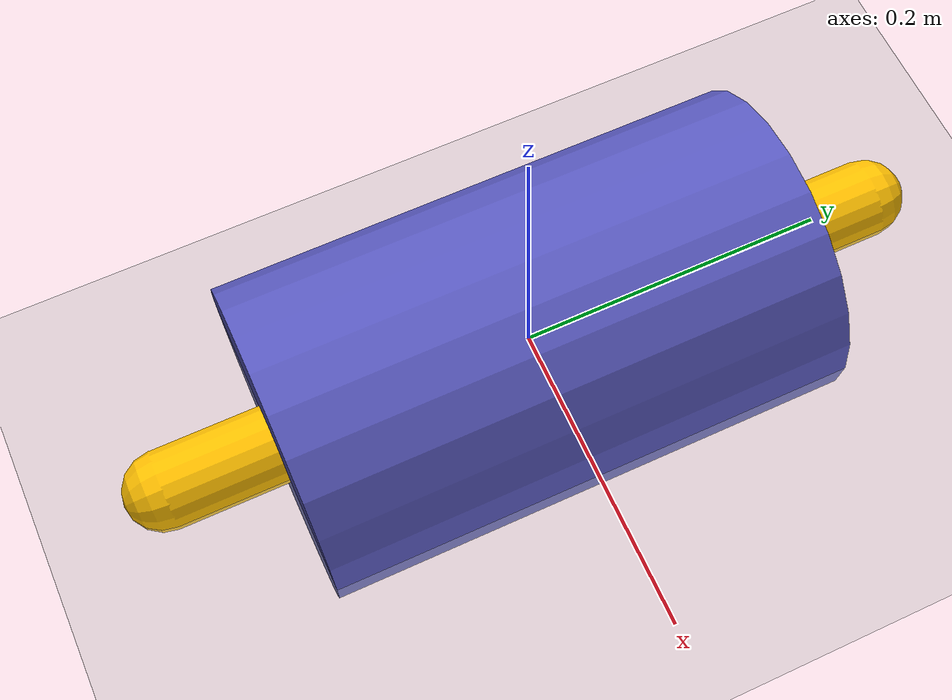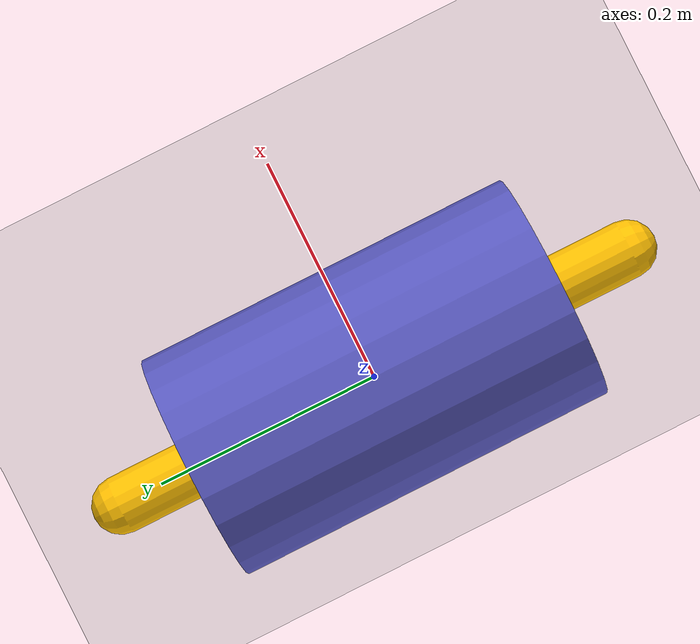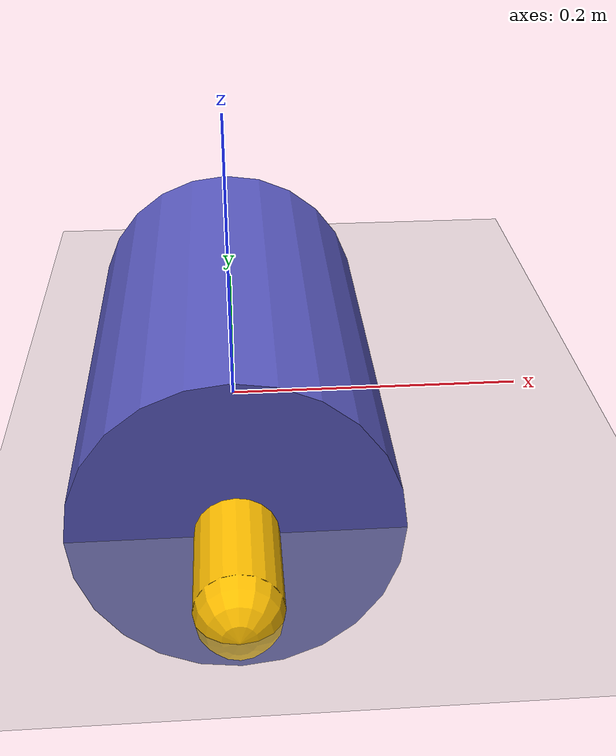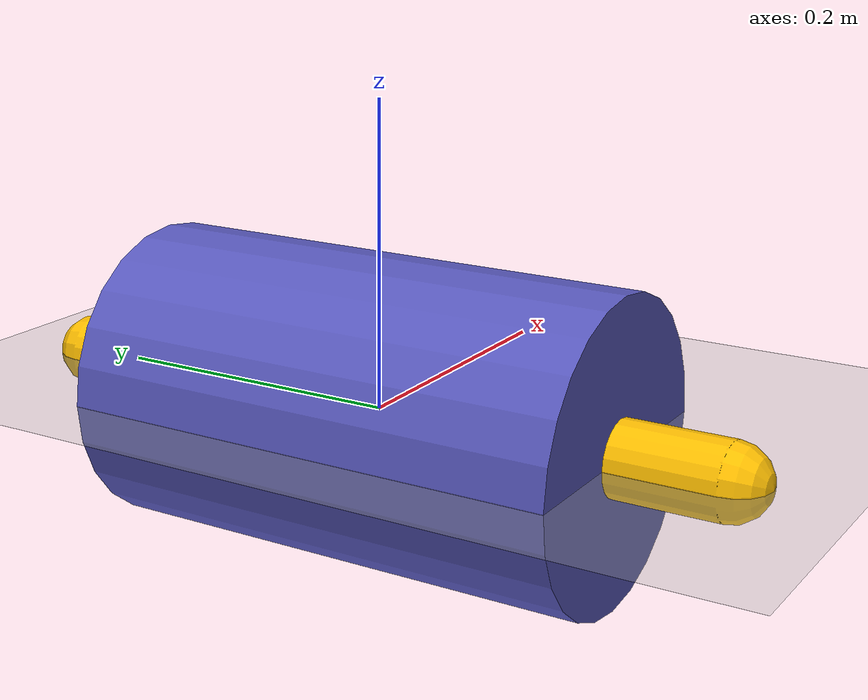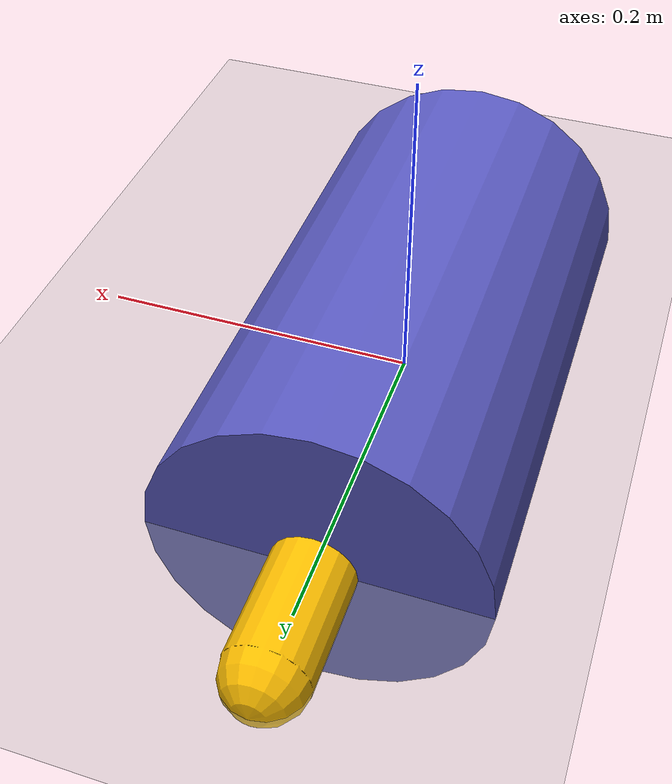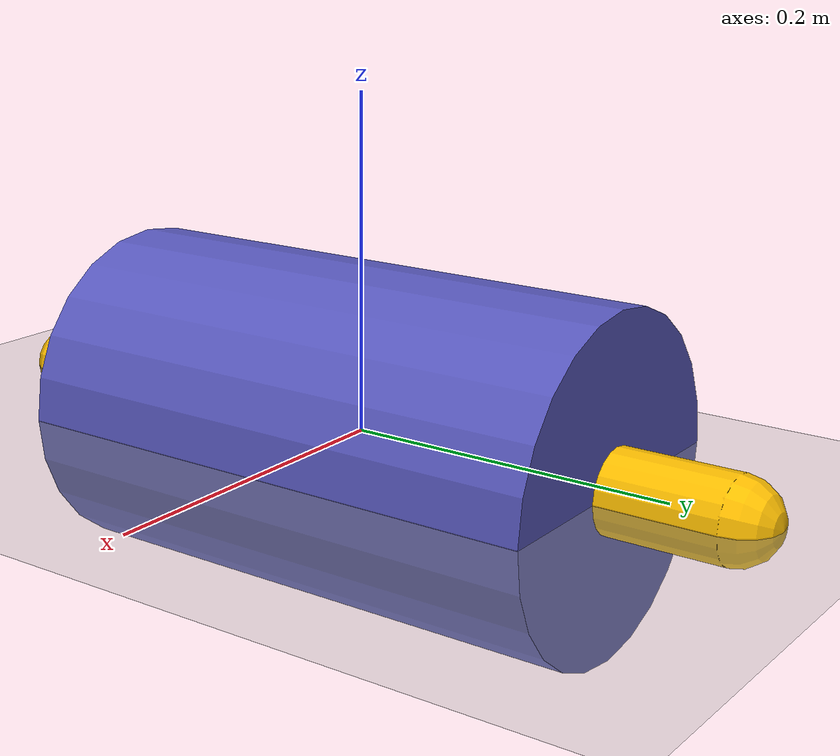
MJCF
<mujoco model="ancf_single_tire">
  <compiler angle="radian"/>
  <option gravity="0 0 -9.81"/>
  <default>
    <joint damping="0.5"/>
    <geom friction="0.8 0.005 0.0001" contype="1" conaffinity="1"/>
  </default>

  <worldbody>
    <light pos="0 0 4" dir="0 0 -1" diffuse="0.8 0.8 0.8"/>
    <geom name="ground" type="plane" size="10 10 0.1" rgba="0.65 0.65 0.65 1"/>

    <body name="chassis" pos="0 0 0">
      <joint name="slide_x" type="slide" axis="1 0 0" damping="5"/>
      <inertial mass="1e-3" pos="0 0 0" diaginertia="1e-6 1e-6 1e-6"/>

      <body name="carrier" pos="0 0 0">
        <!-- slide_z damping=200 N·s/m: v_term = M*g/D = 31.88*9.81/200 ≈ 1.56 m/s. -->
        <joint name="slide_z" type="slide" axis="0 0 1" damping="200"/>
        <inertial mass="1e-3" pos="0 0 0" diaginertia="1e-6 1e-6 1e-6"/>

      <!-- Spindle: mass carrier only — NO spin_y joint.
           Rotation is tracked kinematically in rim_phi/rim_omega GPU arrays
           (like ancf_rim_shell), not as a MuJoCo DOF. -->
      <body name="spindle" pos="0 0 0">
        <inertial mass="31.88" pos="0 0 0"
                  diaginertia="0.4639 0.6248 0.4639"/>
        <!-- Hub disc: R=0.10m (brake drum area, well inside bead at 0.286m so spokes show) -->
        <geom name="rim_vis" type="cylinder" size="0.10 0.168"
              euler="1.5708 0 0" rgba="0.35 0.35 0.75 1.0"
              contype="0" conaffinity="0"/>
        <!-- Axle stick: protrudes 0.07m beyond hub disc on each side -->
        <geom name="axle_vis" type="capsule" size="0.025 0.238"
              euler="1.5708 0 0" rgba="1.0 0.75 0.0 1.0"
              contype="0" conaffinity="0"/>
      </body>
      </body>  <!-- carrier -->
    </body>  <!-- chassis -->
  </worldbody>

  <actuator>
    <velocity name="lin_motor" joint="slide_x" kv="5000"/>
  </actuator>
</mujoco>
